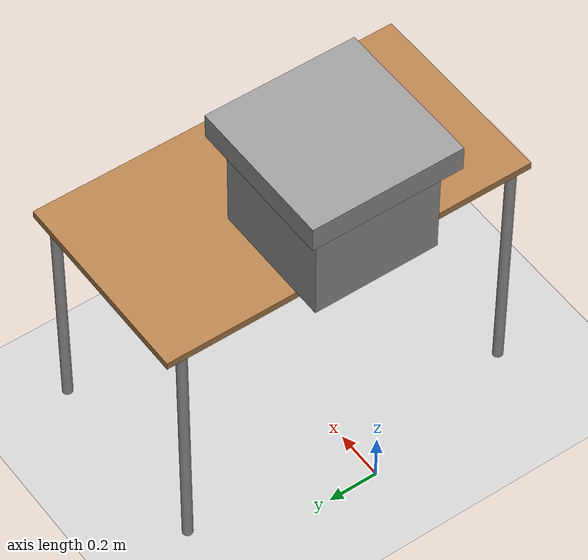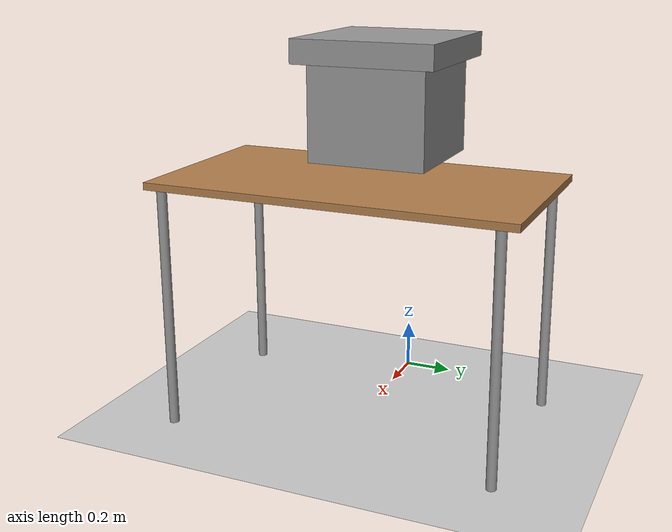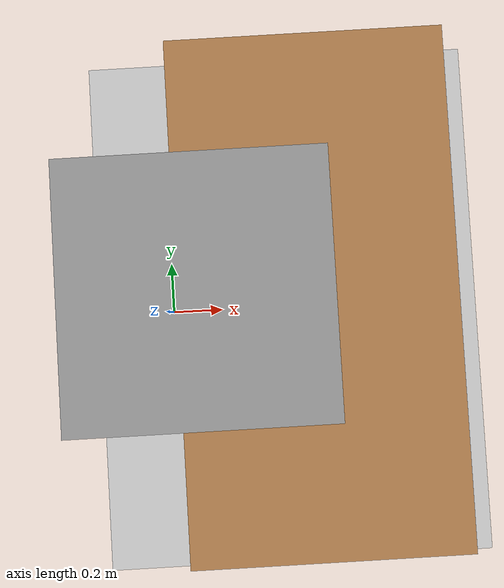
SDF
<sdf version="1.7">
 <world name="default">
  <light name="sun" type="directional">
   <pose>0 0 10 0 -0 0</pose>
   <diffuse>0.8 0.8 0.8 1</diffuse>
   <specular>0.2 0.2 0.2 1</specular>
   <attenuation>
    <range>1000</range>
    <constant>0.9</constant>
    <linear>0.01</linear>
    <quadratic>0.001</quadratic>
   </attenuation>
   <direction>-0.5 0.1 -0.9</direction>
   <spot><inner_angle>0</inner_angle><outer_angle>0</outer_angle><falloff>0</falloff></spot>
  </light>
  <model name="ground_plane">
   <static>1</static>
   <link name="link">
    <collision name="collision">
     <geometry><plane><normal>0 0 1</normal><size>100 100</size></plane></geometry>
     <surface>
      <contact><collide_bitmask>65535</collide_bitmask></contact>
      <friction><ode><mu>100</mu><mu2>50</mu2></ode></friction>
     </surface>
    </collision>
    <visual name="visual">
     <cast_shadows>0</cast_shadows>
     <geometry><plane><normal>0 0 1</normal><size>100 100</size></plane></geometry>
     <material>
      <script><uri>file://media/materials/scripts/gazebo.material</uri><name>Gazebo/Grey</name></script>
     </material>
    </visual>
   </link>
  </model>
  <gravity>0 0 -9.8</gravity>
  <magnetic_field>6e-06 2.3e-05 -4.2e-05</magnetic_field>
  <atmosphere type="adiabatic"/>
  <physics type="ode">
   <max_step_size>0.001</max_step_size>
   <real_time_factor>1</real_time_factor>
   <real_time_update_rate>1000</real_time_update_rate>
   <ode>
    <solver>
     <type>quick</type>
     <iters>100</iters>
     <sor>1.3</sor>
     <use_dynamic_moi_rescaliing>false</use_dynamic_moi_rescaliing>
    </solver>
    <constrains>
     <cfm>0</cfm>
     <erp>0.2</erp>
     <contact_max_correcting_vel>100</contact_max_correcting_vel>
     <contact_surface_layer>0.001</contact_surface_layer>
    </constrains>
   </ode>
  </physics>
  <scene><ambient>0.4 0.4 0.4 1</ambient><background>0.7 0.7 0.7 1</background><shadows>1</shadows></scene>
  <spherical_coordinates>
   <surface_model>EARTH_WGS84</surface_model>
   <latitude_deg>0</latitude_deg>
   <longitude_deg>0</longitude_deg>
   <elevation>0</elevation>
   <heading_deg>0</heading_deg>
  </spherical_coordinates>
  <model name="table">
   <static>1</static>
   <pose>0.56 0 0 0 -0 1.5708</pose>
   <link name="link">
    <collision name="surface">
     <pose>0 0 1 0 -0 0</pose>
     <geometry><box><size>1.5 0.8 0.03</size></box></geometry>
     <surface><friction><ode><mu>0.6</mu><mu2>0.6</mu2></ode></friction></surface>
    </collision>
    <visual name="visual1">
     <pose>0 0 1 0 -0 0</pose>
     <geometry><box><size>1.5 0.8 0.03</size></box></geometry>
     <material>
      <script><uri>file://media/materials/scripts/gazebo.material</uri><name>Gazebo/Wood</name></script>
     </material>
    </visual>
    <collision name="front_left_leg">
     <pose>0.68 0.38 0.5 0 -0 0</pose>
     <geometry><cylinder><radius>0.02</radius><length>1</length></cylinder></geometry>
     <surface><contact><max_vel>0</max_vel></contact></surface>
    </collision>
    <visual name="front_left_leg">
     <pose>0.68 0.38 0.5 0 -0 0</pose>
     <geometry><cylinder><radius>0.02</radius><length>1</length></cylinder></geometry>
     <material>
      <script><uri>file://media/materials/scripts/gazebo.material</uri><name>Gazebo/Grey</name></script>
     </material>
    </visual>
    <collision name="front_right_leg">
     <pose>0.68 -0.38 0.5 0 -0 0</pose>
     <geometry><cylinder><radius>0.02</radius><length>1</length></cylinder></geometry>
    </collision>
    <visual name="front_right_leg">
     <pose>0.68 -0.38 0.5 0 -0 0</pose>
     <geometry><cylinder><radius>0.02</radius><length>1</length></cylinder></geometry>
     <material>
      <script><uri>file://media/materials/scripts/gazebo.material</uri><name>Gazebo/Grey</name></script>
     </material>
    </visual>
    <collision name="back_right_leg">
     <pose>-0.68 -0.38 0.5 0 -0 0</pose>
     <geometry><cylinder><radius>0.02</radius><length>1</length></cylinder></geometry>
    </collision>
    <visual name="back_right_leg">
     <pose>-0.68 -0.38 0.5 0 -0 0</pose>
     <geometry><cylinder><radius>0.02</radius><length>1</length></cylinder></geometry>
     <material>
      <script><uri>file://media/materials/scripts/gazebo.material</uri><name>Gazebo/Grey</name></script>
     </material>
    </visual>
    <collision name="back_left_leg">
     <pose>-0.68 0.38 0.5 0 -0 0</pose>
     <geometry><cylinder><radius>0.02</radius><length>1</length></cylinder></geometry>
    </collision>
    <visual name="back_left_leg">
     <pose>-0.68 0.38 0.5 0 -0 0</pose>
     <geometry><cylinder><radius>0.02</radius><length>1</length></cylinder></geometry>
     <material>
      <script><uri>file://media/materials/scripts/gazebo.material</uri><name>Gazebo/Grey</name></script>
     </material>
    </visual>
   </link>
  </model>
  <model name="box">
   <pose>0.28 0 1.25 0 0 0</pose>
   <link name="link">
    <inertial>
     <mass>0.3</mass>
     <inertia><ixx>0.048</ixx><ixy>0</ixy><ixz>0</ixz><iyy>0.048</iyy><iyz>0</iyz><izz>0.048</izz></inertia>
    </inertial>
    <collision name="collision">
     <geometry><box><size>0.5 0.5 0.4</size></box></geometry>
     <surface>
      <contact><ode><max_vel>0</max_vel><kp>60000</kp><kd>0.1</kd><min_depth>0</min_depth></ode></contact>
      <bounce><restitution_coefficient>0.4</restitution_coefficient></bounce>
      <friction><ode><mu>0.8</mu><mu2>0.8</mu2></ode></friction>
     </surface>
    </collision>
    <visual name="visual">
     <geometry><box><size>0.5 0.5 0.4</size></box></geometry>
     <material>
      <script><name>Gazebo/Grey</name><uri>file://media/materials/scripts/gazebo.material</uri></script>
     </material>
    </visual>
    <collision name="cap_collision">
     <pose>0.0 0.0 0.25 0 0 0</pose>
     <geometry><box><size>0.6 0.6 0.1</size></box></geometry>
     <surface>
      <contact><ode><max_vel>0</max_vel><kp>60000</kp><kd>1</kd><min_depth>0</min_depth></ode></contact>
      <bounce><restitution_coefficient>0.1</restitution_coefficient></bounce>
      <friction><ode><mu>0.8</mu><mu2>0.8</mu2></ode></friction>
     </surface>
    </collision>
    <visual name="cap_visual">
     <pose>0.0 0.0 0.25 0 0 0</pose>
     <geometry><box><size>0.6 0.6 0.1</size></box></geometry>
     <material>
      <script><name>Gazebo/Grey</name><uri>file://media/materials/scripts/gazebo.material</uri></script>
     </material>
    </visual>
   </link>
  </model>
 </world>
</sdf>
